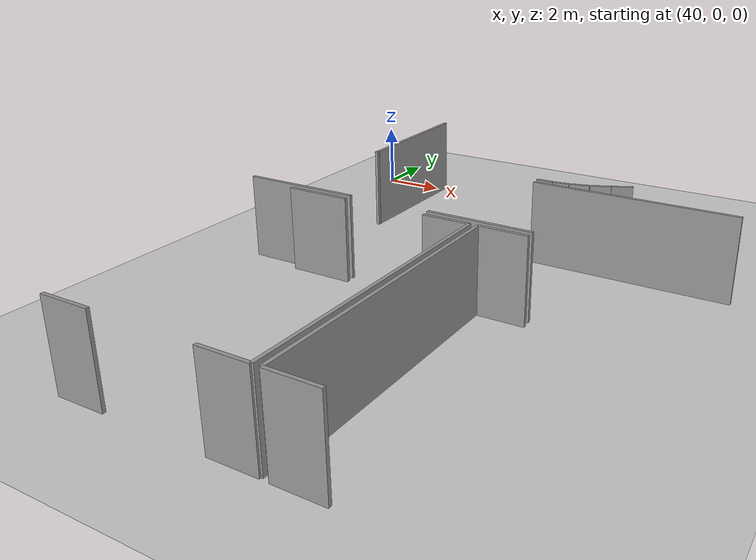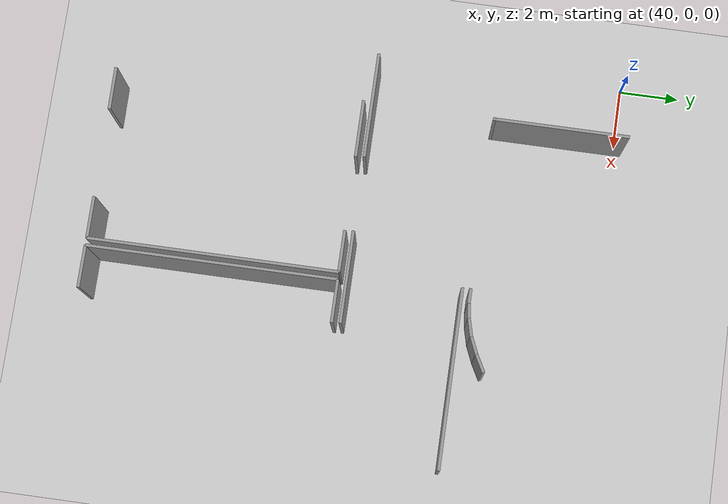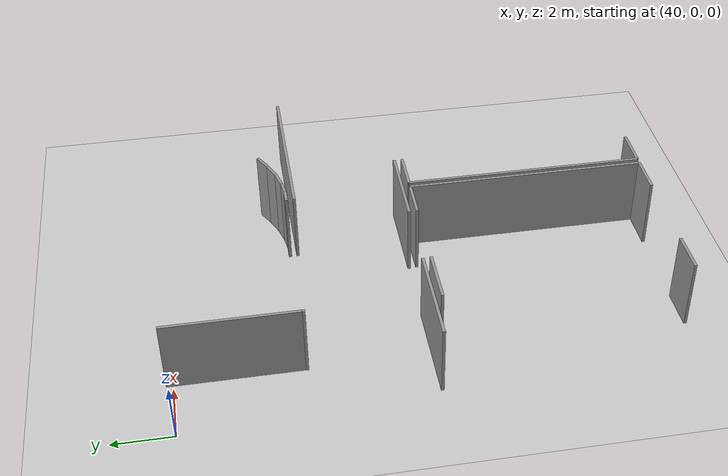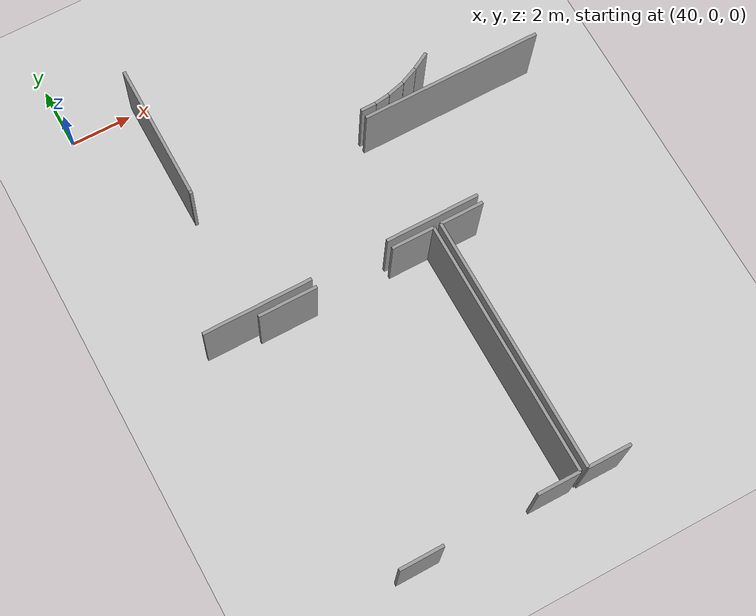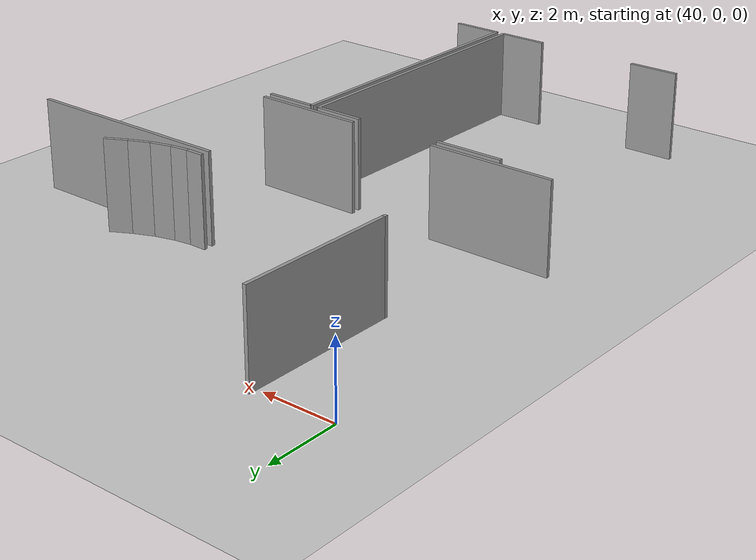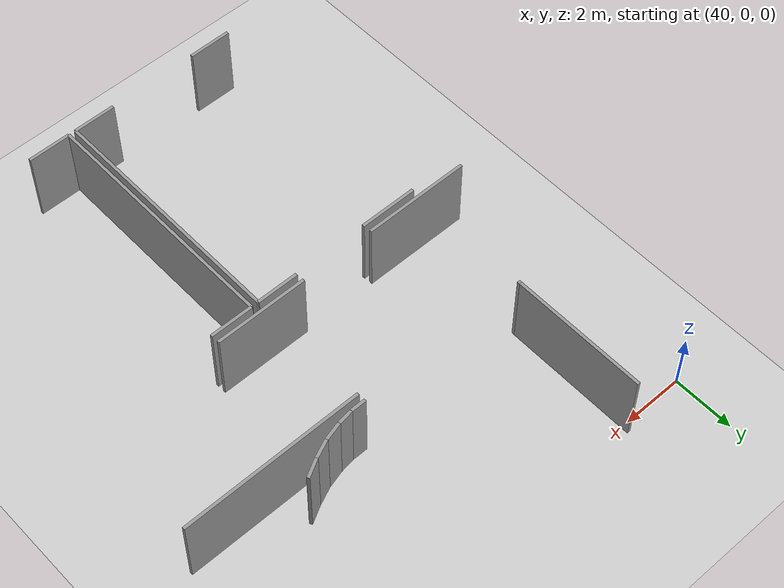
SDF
<sdf version="1.6">
 <world name="default">
  <model name="ground_plane">
   <static>1</static>
   <link name="link">
    <collision name="collision">
     <geometry><plane><normal>0 0 1</normal><size>100 100</size></plane></geometry>
     <surface><friction><ode><mu>100</mu><mu2>50</mu2></ode></friction></surface>
    </collision>
    <visual name="visual">
     <cast_shadows>0</cast_shadows>
     <geometry><plane><normal>0 0 1</normal><size>100 100</size></plane></geometry>
     <material>
      <script><uri>file://media/materials/scripts/gazebo.material</uri><name>Gazebo/Grey</name></script>
     </material>
    </visual>
   </link>
  </model>
  <model name="50041185">
   <static>1</static>
   <link name="Wall_101">
    <collision name="Wall_101_Collision">
     <geometry><box><size>1.90648076361 0.1 2.5</size></box></geometry>
     <pose>0.953240381805 0 1.25 0 0 0</pose>
    </collision>
    <visual name="Wall_101_Visual">
     <pose>0.953240381805 0 1.25 0 0 0</pose>
     <geometry><box><size>1.90648076361 0.1 2.5</size></box></geometry>
     <material>
      <script><uri>file://media/materials/scripts/gazebo.material</uri><name>Gazebo/Grey</name></script>
      <ambient>1 1 1 1</ambient>
     </material>
    </visual>
    <pose>113.866762414 -25.3486953317 0 0 0 0.0</pose>
   </link>
   <link name="Wall_102">
    <collision name="Wall_102_Collision">
     <geometry><box><size>1.38029207285 0.1 2.5</size></box></geometry>
     <pose>0.690146036426 0 1.25 0 0 0</pose>
    </collision>
    <visual name="Wall_102_Visual">
     <pose>0.690146036426 0 1.25 0 0 0</pose>
     <geometry><box><size>1.38029207285 0.1 2.5</size></box></geometry>
     <material>
      <script><uri>file://media/materials/scripts/gazebo.material</uri><name>Gazebo/Grey</name></script>
      <ambient>1 1 1 1</ambient>
     </material>
    </visual>
    <pose>118.250397183 -25.3486953317 0 0 0 0.0</pose>
   </link>
   <link name="Wall_103">
    <collision name="Wall_103_Collision">
     <geometry><box><size>8.23078585137 0.1 2.5</size></box></geometry>
     <pose>4.11539292569 0 1.25 0 0 0</pose>
    </collision>
    <visual name="Wall_103_Visual">
     <pose>4.11539292569 0 1.25 0 0 0</pose>
     <geometry><box><size>8.23078585137 0.1 2.5</size></box></geometry>
     <material>
      <script><uri>file://media/materials/scripts/gazebo.material</uri><name>Gazebo/Grey</name></script>
      <ambient>1 1 1 1</ambient>
     </material>
    </visual>
    <pose>119.630689256 -25.3486953317 0 0 0 -1.57079632679</pose>
   </link>
   <link name="Wall_104">
    <collision name="Wall_104_Collision">
     <geometry><box><size>1.3828340472 0.1 2.5</size></box></geometry>
     <pose>0.691417023602 0 1.25 0 0 0</pose>
    </collision>
    <visual name="Wall_104_Visual">
     <pose>0.691417023602 0 1.25 0 0 0</pose>
     <geometry><box><size>1.3828340472 0.1 2.5</size></box></geometry>
     <material>
      <script><uri>file://media/materials/scripts/gazebo.material</uri><name>Gazebo/Grey</name></script>
      <ambient>1 1 1 1</ambient>
     </material>
    </visual>
    <pose>119.630689256 -33.579481183 0 0 0 3.14159265359</pose>
   </link>
   <link name="Wall_105">
    <collision name="Wall_105_Collision">
     <geometry><box><size>1.4120980747 0.1 2.5</size></box></geometry>
     <pose>0.706049037349 0 1.25 0 0 0</pose>
    </collision>
    <visual name="Wall_105_Visual">
     <pose>0.706049037349 0 1.25 0 0 0</pose>
     <geometry><box><size>1.4120980747 0.1 2.5</size></box></geometry>
     <material>
      <script><uri>file://media/materials/scripts/gazebo.material</uri><name>Gazebo/Grey</name></script>
      <ambient>1 1 1 1</ambient>
     </material>
    </visual>
    <pose>115.278829167 -33.579481183 0 0 0 -3.13493208602</pose>
   </link>
   <link name="Wall_106">
    <collision name="Wall_106_Collision">
     <geometry><box><size>8.2375220834 0.1 2.5</size></box></geometry>
     <pose>4.1187610417 0 1.25 0 0 0</pose>
    </collision>
    <visual name="Wall_106_Visual">
     <pose>4.1187610417 0 1.25 0 0 0</pose>
     <geometry><box><size>8.2375220834 0.1 2.5</size></box></geometry>
     <material>
      <script><uri>file://media/materials/scripts/gazebo.material</uri><name>Gazebo/Grey</name></script>
      <ambient>1 1 1 1</ambient>
     </material>
    </visual>
    <pose>119.869634845 -33.5850735266 0 0 0 1.57079632679</pose>
   </link>
   <link name="Wall_107">
    <collision name="Wall_107_Collision">
     <geometry><box><size>1.41587971377 0.1 2.5</size></box></geometry>
     <pose>0.707939856887 0 1.25 0 0 0</pose>
    </collision>
    <visual name="Wall_107_Visual">
     <pose>0.707939856887 0 1.25 0 0 0</pose>
     <geometry><box><size>1.41587971377 0.1 2.5</size></box></geometry>
     <material>
      <script><uri>file://media/materials/scripts/gazebo.material</uri><name>Gazebo/Grey</name></script>
      <ambient>1 1 1 1</ambient>
     </material>
    </visual>
    <pose>119.869634845 -25.3475514432 0 0 0 0.0</pose>
   </link>
   <link name="Wall_111">
    <collision name="Wall_111_Collision">
     <geometry><box><size>1.39936207525 0.1 2.5</size></box></geometry>
     <pose>0.699681037625 0 1.25 0 0 0</pose>
    </collision>
    <visual name="Wall_111_Visual">
     <pose>0.699681037625 0 1.25 0 0 0</pose>
     <geometry><box><size>1.39936207525 0.1 2.5</size></box></geometry>
     <material>
      <script><uri>file://media/materials/scripts/gazebo.material</uri><name>Gazebo/Grey</name></script>
      <ambient>1 1 1 1</ambient>
     </material>
    </visual>
    <pose>121.268991726 -33.5888864881 0 0 0 3.13886786469</pose>
   </link>
   <link name="Wall_200">
    <collision name="Wall_200_Collision">
     <geometry><box><size>4.41286747417 0.1 2.5</size></box></geometry>
     <pose>2.20643373708 0 1.25 0 0 0</pose>
    </collision>
    <visual name="Wall_200_Visual">
     <pose>2.20643373708 0 1.25 0 0 0</pose>
     <geometry><box><size>4.41286747417 0.1 2.5</size></box></geometry>
     <material>
      <script><uri>file://media/materials/scripts/gazebo.material</uri><name>Gazebo/Grey</name></script>
      <ambient>1 1 1 1</ambient>
     </material>
    </visual>
    <pose>113.905781721 -20.9669670433 0 0 0 1.57079632679</pose>
   </link>
   <link name="Wall_216">
    <collision name="Wall_216_Collision">
     <geometry><box><size>0.626104086054 0.1 2.5</size></box></geometry>
     <pose>0.313052043027 0 1.25 0 0 0</pose>
    </collision>
    <visual name="Wall_216_Visual">
     <pose>0.313052043027 0 1.25 0 0 0</pose>
     <geometry><box><size>0.626104086054 0.1 2.5</size></box></geometry>
     <material>
      <script><uri>file://media/materials/scripts/gazebo.material</uri><name>Gazebo/Grey</name></script>
      <ambient>1 1 1 1</ambient>
     </material>
    </visual>
    <pose>122.229858031 -20.3110105619 0 0 0 -2.64453029058</pose>
   </link>
   <link name="Wall_217">
    <collision name="Wall_217_Collision">
     <geometry><box><size>0.604538259613 0.1 2.5</size></box></geometry>
     <pose>0.302269129807 0 1.25 0 0 0</pose>
    </collision>
    <visual name="Wall_217_Visual">
     <pose>0.302269129807 0 1.25 0 0 0</pose>
     <geometry><box><size>0.604538259613 0.1 2.5</size></box></geometry>
     <material>
      <script><uri>file://media/materials/scripts/gazebo.material</uri><name>Gazebo/Grey</name></script>
      <ambient>1 1 1 1</ambient>
     </material>
    </visual>
    <pose>121.679520584 -20.6095654495 0 0 0 -2.73570705138</pose>
   </link>
   <link name="Wall_218">
    <collision name="Wall_218_Collision">
     <geometry><box><size>0.584585974721 0.1 2.5</size></box></geometry>
     <pose>0.292292987361 0 1.25 0 0 0</pose>
    </collision>
    <visual name="Wall_218_Visual">
     <pose>0.292292987361 0 1.25 0 0 0</pose>
     <geometry><box><size>0.584585974721 0.1 2.5</size></box></geometry>
     <material>
      <script><uri>file://media/materials/scripts/gazebo.material</uri><name>Gazebo/Grey</name></script>
      <ambient>1 1 1 1</ambient>
     </material>
    </visual>
    <pose>121.124099188 -20.8482568411 0 0 0 -2.8859620704</pose>
   </link>
   <link name="Wall_219">
    <collision name="Wall_219_Collision">
     <geometry><box><size>0.48878718204 0.1 2.5</size></box></geometry>
     <pose>0.24439359102 0 1.25 0 0 0</pose>
    </collision>
    <visual name="Wall_219_Visual">
     <pose>0.24439359102 0 1.25 0 0 0</pose>
     <geometry><box><size>0.48878718204 0.1 2.5</size></box></geometry>
     <material>
      <script><uri>file://media/materials/scripts/gazebo.material</uri><name>Gazebo/Grey</name></script>
      <ambient>1 1 1 1</ambient>
     </material>
    </visual>
    <pose>120.558509895 -20.9960726496 0 0 0 -3.00517489545</pose>
   </link>
   <link name="Wall_220">
    <collision name="Wall_220_Collision">
     <geometry><box><size>0.494414011363 0.1 2.5</size></box></geometry>
     <pose>0.247207005681 0 1.25 0 0 0</pose>
    </collision>
    <visual name="Wall_220_Visual">
     <pose>0.247207005681 0 1.25 0 0 0</pose>
     <geometry><box><size>0.494414011363 0.1 2.5</size></box></geometry>
     <material>
      <script><uri>file://media/materials/scripts/gazebo.material</uri><name>Gazebo/Grey</name></script>
      <ambient>1 1 1 1</ambient>
     </material>
    </visual>
    <pose>120.074263781 -21.0625452789 0 0 0 3.14159265359</pose>
   </link>
   <link name="Wall_221">
    <collision name="Wall_221_Collision">
     <geometry><box><size>0.0958428835691 0.1 2.5</size></box></geometry>
     <pose>0.0479214417846 0 1.25 0 0 0</pose>
    </collision>
    <visual name="Wall_221_Visual">
     <pose>0.0479214417846 0 1.25 0 0 0</pose>
     <geometry><box><size>0.0958428835691 0.1 2.5</size></box></geometry>
     <material>
      <script><uri>file://media/materials/scripts/gazebo.material</uri><name>Gazebo/Grey</name></script>
      <ambient>1 1 1 1</ambient>
     </material>
    </visual>
    <pose>113.898664192 -21.0625452789 0 0 0 1.49646543963</pose>
   </link>
   <link name="Wall_258">
    <collision name="Wall_258_Collision">
     <geometry><box><size>5.90500641849 0.1 2.5</size></box></geometry>
     <pose>2.95250320924 0 1.25 0 0 0</pose>
    </collision>
    <visual name="Wall_258_Visual">
     <pose>2.95250320924 0 1.25 0 0 0</pose>
     <geometry><box><size>5.90500641849 0.1 2.5</size></box></geometry>
     <material>
      <script><uri>file://media/materials/scripts/gazebo.material</uri><name>Gazebo/Grey</name></script>
      <ambient>1 1 1 1</ambient>
     </material>
    </visual>
    <pose>119.591288654 -21.3291983884 0 0 0 0.0</pose>
   </link>
   <link name="Wall_263">
    <collision name="Wall_263_Collision">
     <geometry><box><size>3.04782724742 0.1 2.5</size></box></geometry>
     <pose>1.52391362371 0 1.25 0 0 0</pose>
    </collision>
    <visual name="Wall_263_Visual">
     <pose>1.52391362371 0 1.25 0 0 0</pose>
     <geometry><box><size>3.04782724742 0.1 2.5</size></box></geometry>
     <material>
      <script><uri>file://media/materials/scripts/gazebo.material</uri><name>Gazebo/Grey</name></script>
      <ambient>1 1 1 1</ambient>
     </material>
    </visual>
    <pose>121.272804687 -25.0711117325 0 0 0 3.14159265359</pose>
   </link>
   <link name="Wall_264">
    <collision name="Wall_264_Collision">
     <geometry><box><size>3.52673521524 0.1 2.5</size></box></geometry>
     <pose>1.76336760762 0 1.25 0 0 0</pose>
    </collision>
    <visual name="Wall_264_Visual">
     <pose>1.76336760762 0 1.25 0 0 0</pose>
     <geometry><box><size>3.52673521524 0.1 2.5</size></box></geometry>
     <material>
      <script><uri>file://media/materials/scripts/gazebo.material</uri><name>Gazebo/Grey</name></script>
      <ambient>1 1 1 1</ambient>
     </material>
    </visual>
    <pose>115.748586027 -25.0711117325 0 0 0 3.14159265359</pose>
   </link>
   <pose>-71.7 16.7921910548 0 0 0 0</pose>
  </model>
 </world>
</sdf>
